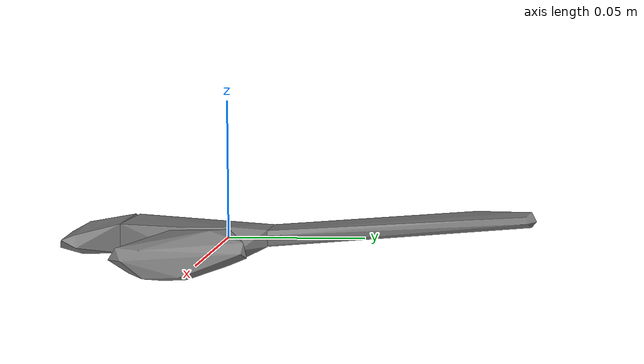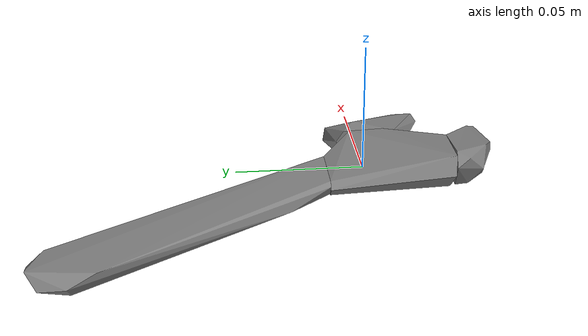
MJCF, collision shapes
<mujoco model="adjustable_wrench">
  <compiler angle="radian" />

  <asset>
    <mesh name="adjustable_wrench_visual_mesh" file="adjustable_wrench/textured.obj" />
    <mesh name="adjustable_wrench_collision_mesh_0" file="adjustable_wrench/textured_coacd_0.stl" />
    <mesh name="adjustable_wrench_collision_mesh_1" file="adjustable_wrench/textured_coacd_1.stl" />
    <mesh name="adjustable_wrench_collision_mesh_2" file="adjustable_wrench/textured_coacd_2.stl" />
    <mesh name="adjustable_wrench_collision_mesh_3" file="adjustable_wrench/textured_coacd_3.stl" />
    <texture name="adjustable_wrench_texture" type="2d" file="adjustable_wrench/texture_map.png" />
    <material name="adjustable_wrench_material" texture="adjustable_wrench_texture" />
  </asset>

  <worldbody>
    <body name="adjustable_wrench" pos="0 0 0" euler="0 0 0">
      <freejoint name="adjustable_wrench_joint" />
      <geom name="adjustable_wrench_visual_geom" type="mesh" mesh="adjustable_wrench_visual_mesh" material="adjustable_wrench_material" pos="-0.01450146241685899 0.049664842094331994 -0.004250780997626007" euler="0 0 0" contype="0" conaffinity="0" group="0" />
      <geom name="adjustable_wrench_collision_geom_0" type="mesh" mesh="adjustable_wrench_collision_mesh_0" pos="-0.01450146241685899 0.049664842094331994 -0.004250780997626007" euler="0 0 0" contype="1" conaffinity="1" group="3" />
      <geom name="adjustable_wrench_collision_geom_1" type="mesh" mesh="adjustable_wrench_collision_mesh_1" pos="-0.01450146241685899 0.049664842094331994 -0.004250780997626007" euler="0 0 0" contype="1" conaffinity="1" group="3" />
      <geom name="adjustable_wrench_collision_geom_2" type="mesh" mesh="adjustable_wrench_collision_mesh_2" pos="-0.01450146241685899 0.049664842094331994 -0.004250780997626007" euler="0 0 0" contype="1" conaffinity="1" group="3" />
      <geom name="adjustable_wrench_collision_geom_3" type="mesh" mesh="adjustable_wrench_collision_mesh_3" pos="-0.01450146241685899 0.049664842094331994 -0.004250780997626007" euler="0 0 0" contype="1" conaffinity="1" group="3" />
      <inertial pos="0 0 0" euler="0 0 0" mass="0.252" diaginertia="0.001 0.001 0.001" />
    </body>
  </worldbody>
</mujoco>
